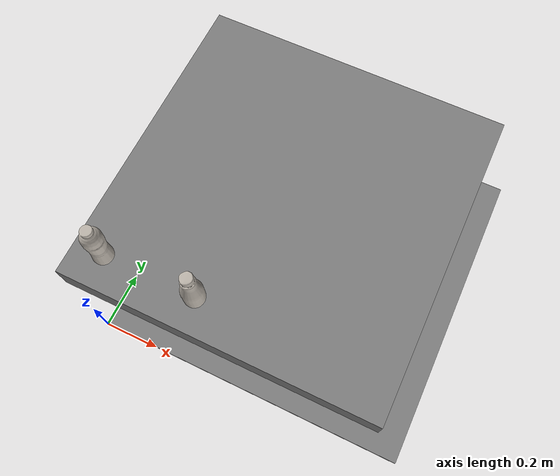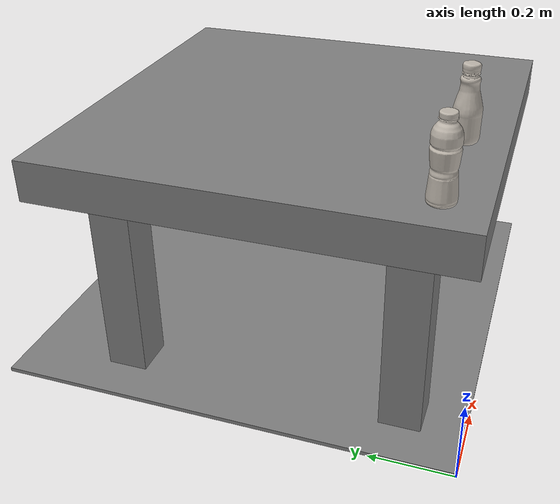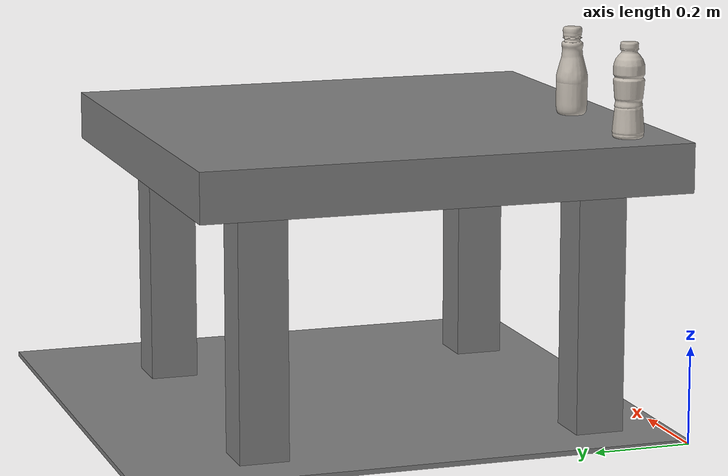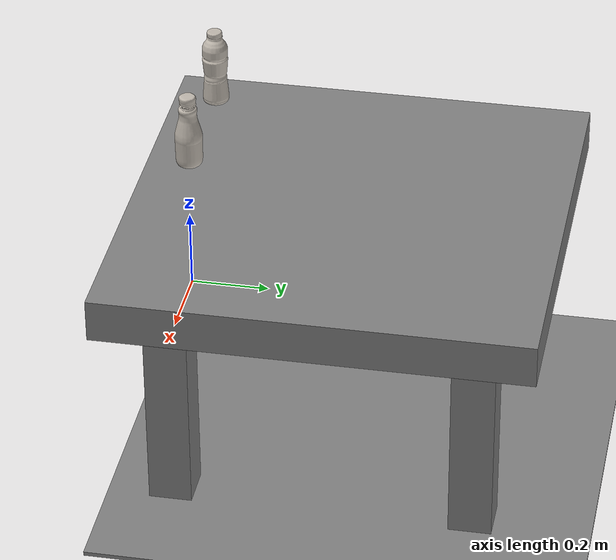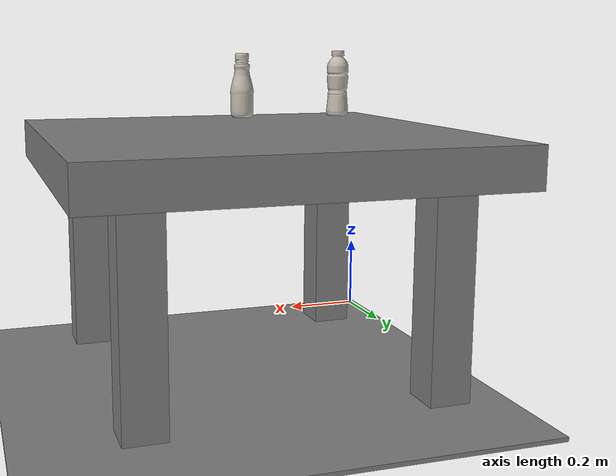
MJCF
<?xml version="1.0" encoding="utf-8"?>
<mujoco model="rsml_model">
    <asset>
        <texture name="tex_base8" type="2d" file="assets/bottles/bottle8/texture_1.png" />
        <texture name="tex_base6" type="2d" file="assets/bottles/bottle6/texture_1.png" />
        <material name="mat_base8" texture="tex_base8" texrepeat="1 1" />
        <material name="mat_base6" texture="tex_base6" texrepeat="1 1" />
        <mesh name="mesh_base8" file="assets/bottles/bottle8/base8.stl" />
        <mesh name="mesh_base6" file="assets/bottles/bottle6/base6.stl" />
    </asset>
    <worldbody>
        <geom name="group_0" pos="0.396 0.1 0.61" type="mesh" mesh="mesh_base8" material="mat_base8" />
        <geom name="group_1" pos="0.1 0.1 0.61" type="mesh" mesh="mesh_base6" material="mat_base6" />
        <geom name="table_plane" size="0.5 0.5 0.05" pos="0.5 0.5 0.56" type="box" />
        <geom name="leg1" size="0.05 0.05 0.25" pos="0.85 0.85 0.26" type="box" />
        <geom name="leg2" size="0.05 0.05 0.25" pos="0.15 0.85 0.26" type="box" />
        <geom name="leg3" size="0.05 0.05 0.25" pos="0.85 0.15 0.26" type="box" />
        <geom name="leg4" size="0.05 0.05 0.25" pos="0.15 0.15 0.26" type="box" />
        <geom name="floor" size="5 5 0.005" pos="5 5 0.005" type="box" />
        <light name="default_light" pos="0 0 2" mode="trackcom" />
    </worldbody>
</mujoco>
